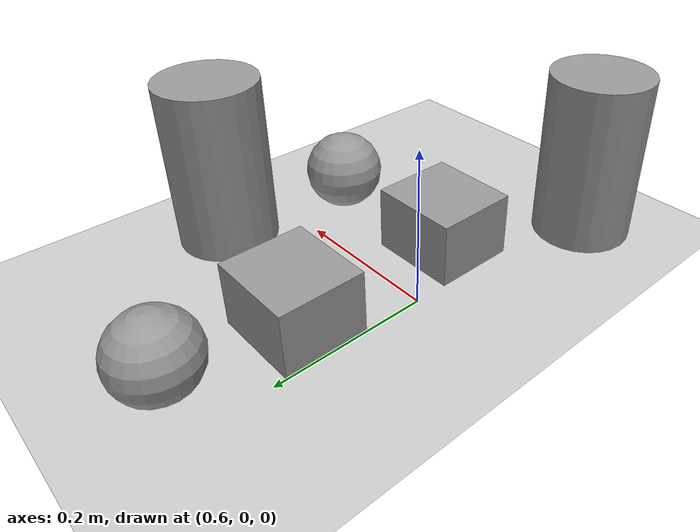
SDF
<sdf version="1.6">
 <world name="default">
  <light name="sun" type="directional">
   <pose>0 0 10 0 -0 0</pose>
   <diffuse>0.8 0.8 0.8 1</diffuse>
   <specular>0.2 0.2 0.2 1</specular>
   <attenuation>
    <range>1000</range>
    <constant>0.9</constant>
    <linear>0.01</linear>
    <quadratic>0.001</quadratic>
   </attenuation>
   <direction>-0.5 0.1 -0.9</direction>
  </light>
  <model name="ground_plane">
   <static>1</static>
   <link name="link">
    <collision name="collision">
     <geometry><plane><normal>0 0 1</normal><size>100 100</size></plane></geometry>
     <surface><friction><ode><mu>100</mu><mu2>50</mu2></ode></friction></surface>
    </collision>
    <visual name="visual">
     <cast_shadows>0</cast_shadows>
     <geometry><plane><normal>0 0 1</normal><size>100 100</size></plane></geometry>
     <material>
      <script><uri>file://media/materials/scripts/gazebo.material</uri><name>Gazebo/Grey</name></script>
     </material>
    </visual>
   </link>
  </model>
  <gravity>0 0 -9.8</gravity>
  <magnetic_field>6e-06 2.3e-05 -4.2e-05</magnetic_field>
  <atmosphere type="adiabatic"/>
  <physics name="default_physics" default="0" type="ode">
   <max_step_size>0.001</max_step_size>
   <real_time_factor>1</real_time_factor>
   <real_time_update_rate>1000</real_time_update_rate>
  </physics>
  <scene><ambient>0.4 0.4 0.4 1</ambient><background>0.7 0.7 0.7 1</background><shadows>1</shadows></scene>
  <audio><device>default</device></audio>
  <spherical_coordinates>
   <surface_model>EARTH_WGS84</surface_model>
   <latitude_deg>0</latitude_deg>
   <longitude_deg>0</longitude_deg>
   <elevation>0</elevation>
   <heading_deg>0</heading_deg>
  </spherical_coordinates>
  <model name="unit_box">
   <pose>0.65786 -0.09707 0.041679 1e-06 -0 5e-06</pose>
   <link name="link">
    <inertial>
     <mass>1</mass>
     <inertia>
      <ixx>0.166667</ixx>
      <ixy>0</ixy>
      <ixz>0</ixz>
      <iyy>0.166667</iyy>
      <iyz>0</iyz>
      <izz>0.166667</izz>
     </inertia>
    </inertial>
    <collision name="collision">
     <geometry><box><size>0.116295 0.106961 0.0833586</size></box></geometry>
    </collision>
    <visual name="visual">
     <geometry><box><size>0.116295 0.106961 0.0833586</size></box></geometry>
     <material>
      <script><name>Gazebo/Grey</name><uri>file://media/materials/scripts/gazebo.material</uri></script>
     </material>
    </visual>
   </link>
  </model>
  <model name="unit_sphere">
   <pose>0.668794 0.284847 0.051553 0 -0 0</pose>
   <link name="link">
    <inertial>
     <mass>1</mass>
     <inertia><ixx>0.1</ixx><ixy>0</ixy><ixz>0</ixz><iyy>0.1</iyy><iyz>0</iyz><izz>0.1</izz></inertia>
    </inertial>
    <collision name="collision"><geometry><sphere><radius>0.051553</radius></sphere></geometry></collision>
    <visual name="visual">
     <geometry><sphere><radius>0.051553</radius></sphere></geometry>
     <material>
      <script><name>Gazebo/Grey</name><uri>file://media/materials/scripts/gazebo.material</uri></script>
     </material>
    </visual>
   </link>
  </model>
  <model name="unit_cylinder">
   <pose>0.872382 0.089606 0.109305 0 -0 0</pose>
   <link name="link">
    <inertial>
     <mass>1</mass>
     <inertia><ixx>0.145833</ixx><ixy>0</ixy><ixz>0</ixz><iyy>0.145833</iyy><iyz>0</iyz><izz>0.125</izz></inertia>
    </inertial>
    <collision name="collision">
     <geometry><cylinder><radius>0.0642945</radius><length>0.21863</length></cylinder></geometry>
    </collision>
    <visual name="visual">
     <geometry><cylinder><radius>0.0642945</radius><length>0.21863</length></cylinder></geometry>
     <material>
      <script><name>Gazebo/Grey</name><uri>file://media/materials/scripts/gazebo.material</uri></script>
     </material>
    </visual>
   </link>
  </model>
  <model name="unit_box_clone">
   <pose>0.658799 0.130112 0.041679 1e-06 -0 -4.2e-05</pose>
   <link name="link">
    <inertial>
     <mass>1</mass>
     <inertia>
      <ixx>0.166667</ixx>
      <ixy>0</ixy>
      <ixz>0</ixz>
      <iyy>0.166667</iyy>
      <iyz>0</iyz>
      <izz>0.166667</izz>
     </inertia>
    </inertial>
    <collision name="collision">
     <geometry><box><size>0.116295 0.106961 0.083359</size></box></geometry>
    </collision>
    <visual name="visual">
     <geometry><box><size>0.116295 0.106961 0.083359</size></box></geometry>
     <material>
      <script><name>Gazebo/Grey</name><uri>file://media/materials/scripts/gazebo.material</uri></script>
     </material>
    </visual>
   </link>
  </model>
  <model name="unit_cylinder_clone">
   <pose>0.569892 -0.272312 0.109306 -0 -0 -0.001506</pose>
   <link name="link">
    <inertial>
     <mass>1</mass>
     <inertia><ixx>0.145833</ixx><ixy>0</ixy><ixz>0</ixz><iyy>0.145833</iyy><iyz>0</iyz><izz>0.125</izz></inertia>
    </inertial>
    <collision name="collision">
     <geometry><cylinder><radius>0.0642944</radius><length>0.21863</length></cylinder></geometry>
    </collision>
    <visual name="visual">
     <geometry><cylinder><radius>0.0642944</radius><length>0.21863</length></cylinder></geometry>
     <material>
      <script><name>Gazebo/Grey</name><uri>file://media/materials/scripts/gazebo.material</uri></script>
     </material>
    </visual>
   </link>
  </model>
  <model name="unit_sphere_clone">
   <pose>0.83337 -0.076183 0.051553 0.004663 0.017717 0.000486</pose>
   <link name="link">
    <inertial>
     <mass>1</mass>
     <inertia><ixx>0.1</ixx><ixy>0</ixy><ixz>0</ixz><iyy>0.1</iyy><iyz>0</iyz><izz>0.1</izz></inertia>
    </inertial>
    <collision name="collision"><geometry><sphere><radius>0.0515529</radius></sphere></geometry></collision>
    <visual name="visual">
     <geometry><sphere><radius>0.0515529</radius></sphere></geometry>
     <material>
      <script><name>Gazebo/Grey</name><uri>file://media/materials/scripts/gazebo.material</uri></script>
     </material>
    </visual>
   </link>
  </model>
 </world>
</sdf>
